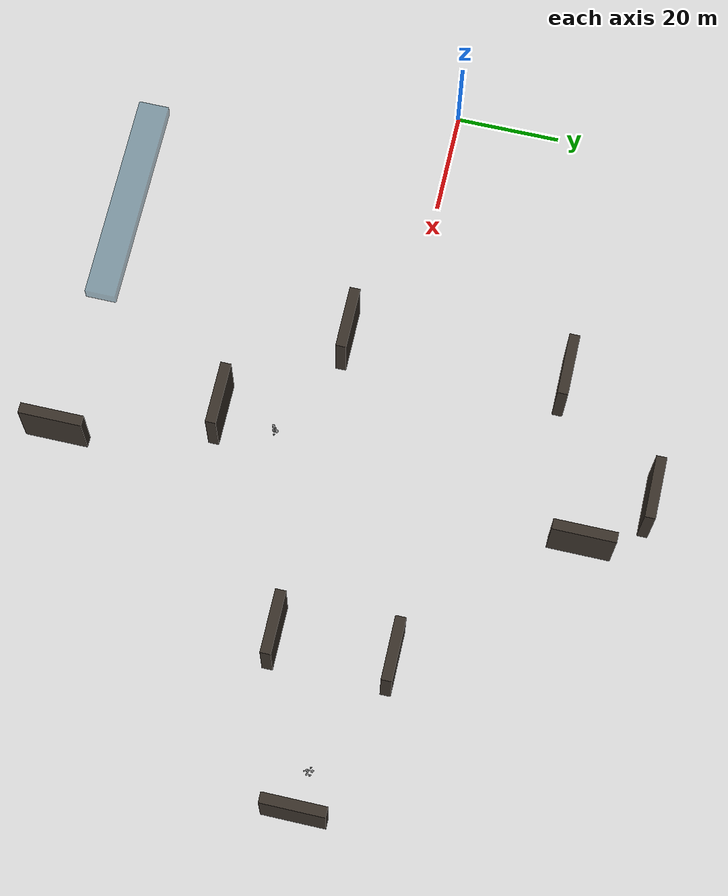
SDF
<sdf version="1.9">
 <world name="living_map">
  <model name="blocker_0">
   <static>true</static>
   <pose>50 -11 4.0 0 0 0</pose>
   <link name="l">
    <collision name="c"><geometry><box><size>12 2.0 12</size></box></geometry></collision>
    <visual name="v">
     <geometry><box><size>12 2.0 12</size></box></geometry>
     <material>
      <ambient>0.22 0.19 0.16 1</ambient>
      <diffuse>0.22 0.19 0.16 1</diffuse>
      <specular>0.05 0.05 0.05 1</specular>
      <pbr>
       <metal>
        <albedo_map>model://lm_rock/materials/textures/rock.png</albedo_map>
        <roughness>0.95</roughness>
        <metalness>0.0</metalness>
       </metal>
      </pbr>
     </material>
    </visual>
   </link>
  </model>
  <model name="blocker_1">
   <static>true</static>
   <pose>50 31 4.0 0 0 0</pose>
   <link name="l">
    <collision name="c"><geometry><box><size>12 2.0 12</size></box></geometry></collision>
    <visual name="v">
     <geometry><box><size>12 2.0 12</size></box></geometry>
     <material>
      <ambient>0.22 0.19 0.16 1</ambient>
      <diffuse>0.22 0.19 0.16 1</diffuse>
      <specular>0.05 0.05 0.05 1</specular>
      <pbr>
       <metal>
        <albedo_map>model://lm_rock/materials/textures/rock.png</albedo_map>
        <roughness>0.95</roughness>
        <metalness>0.0</metalness>
       </metal>
      </pbr>
     </material>
    </visual>
   </link>
  </model>
  <model name="blocker_2">
   <static>true</static>
   <pose>70 -31 4.0 0 0 0</pose>
   <link name="l">
    <collision name="c"><geometry><box><size>12 2.0 12</size></box></geometry></collision>
    <visual name="v">
     <geometry><box><size>12 2.0 12</size></box></geometry>
     <material>
      <ambient>0.22 0.19 0.16 1</ambient>
      <diffuse>0.22 0.19 0.16 1</diffuse>
      <specular>0.05 0.05 0.05 1</specular>
      <pbr>
       <metal>
        <albedo_map>model://lm_rock/materials/textures/rock.png</albedo_map>
        <roughness>0.95</roughness>
        <metalness>0.0</metalness>
       </metal>
      </pbr>
     </material>
    </visual>
   </link>
  </model>
  <model name="blocker_3">
   <static>true</static>
   <pose>110 11 4.0 0 0 0</pose>
   <link name="l">
    <collision name="c"><geometry><box><size>12 2.0 12</size></box></geometry></collision>
    <visual name="v">
     <geometry><box><size>12 2.0 12</size></box></geometry>
     <material>
      <ambient>0.22 0.19 0.16 1</ambient>
      <diffuse>0.22 0.19 0.16 1</diffuse>
      <specular>0.05 0.05 0.05 1</specular>
      <pbr>
       <metal>
        <albedo_map>model://lm_rock/materials/textures/rock.png</albedo_map>
        <roughness>0.95</roughness>
        <metalness>0.0</metalness>
       </metal>
      </pbr>
     </material>
    </visual>
   </link>
  </model>
  <model name="blocker_4">
   <static>true</static>
   <pose>110 -11 4.0 0 0 0</pose>
   <link name="l">
    <collision name="c"><geometry><box><size>12 2.0 12</size></box></geometry></collision>
    <visual name="v">
     <geometry><box><size>12 2.0 12</size></box></geometry>
     <material>
      <ambient>0.22 0.19 0.16 1</ambient>
      <diffuse>0.22 0.19 0.16 1</diffuse>
      <specular>0.05 0.05 0.05 1</specular>
      <pbr>
       <metal>
        <albedo_map>model://lm_rock/materials/textures/rock.png</albedo_map>
        <roughness>0.95</roughness>
        <metalness>0.0</metalness>
       </metal>
      </pbr>
     </material>
    </visual>
   </link>
  </model>
  <model name="blocker_5">
   <static>true</static>
   <pose>141 0 4.0 0 0 0</pose>
   <link name="l">
    <collision name="c"><geometry><box><size>2.0 12 12</size></box></geometry></collision>
    <visual name="v">
     <geometry><box><size>2.0 12 12</size></box></geometry>
     <material>
      <ambient>0.22 0.19 0.16 1</ambient>
      <diffuse>0.22 0.19 0.16 1</diffuse>
      <specular>0.05 0.05 0.05 1</specular>
      <pbr>
       <metal>
        <albedo_map>model://lm_rock/materials/textures/rock.png</albedo_map>
        <roughness>0.95</roughness>
        <metalness>0.0</metalness>
       </metal>
      </pbr>
     </material>
    </visual>
   </link>
  </model>
  <model name="blocker_6">
   <static>true</static>
   <pose>70 51 4.0 0 0 0</pose>
   <link name="l">
    <collision name="c"><geometry><box><size>12 2.0 12</size></box></geometry></collision>
    <visual name="v">
     <geometry><box><size>12 2.0 12</size></box></geometry>
     <material>
      <ambient>0.22 0.19 0.16 1</ambient>
      <diffuse>0.22 0.19 0.16 1</diffuse>
      <specular>0.05 0.05 0.05 1</specular>
      <pbr>
       <metal>
        <albedo_map>model://lm_rock/materials/textures/rock.png</albedo_map>
        <roughness>0.95</roughness>
        <metalness>0.0</metalness>
       </metal>
      </pbr>
     </material>
    </visual>
   </link>
  </model>
  <model name="blocker_7">
   <static>true</static>
   <pose>81 40 4.0 0 0 0</pose>
   <link name="l">
    <collision name="c"><geometry><box><size>2.0 12 12</size></box></geometry></collision>
    <visual name="v">
     <geometry><box><size>2.0 12 12</size></box></geometry>
     <material>
      <ambient>0.22 0.19 0.16 1</ambient>
      <diffuse>0.22 0.19 0.16 1</diffuse>
      <specular>0.05 0.05 0.05 1</specular>
      <pbr>
       <metal>
        <albedo_map>model://lm_rock/materials/textures/rock.png</albedo_map>
        <roughness>0.95</roughness>
        <metalness>0.0</metalness>
       </metal>
      </pbr>
     </material>
    </visual>
   </link>
  </model>
  <model name="blocker_8">
   <static>true</static>
   <pose>81 -60 4.0 0 0 0</pose>
   <link name="l">
    <collision name="c"><geometry><box><size>2.0 12 12</size></box></geometry></collision>
    <visual name="v">
     <geometry><box><size>2.0 12 12</size></box></geometry>
     <material>
      <ambient>0.22 0.19 0.16 1</ambient>
      <diffuse>0.22 0.19 0.16 1</diffuse>
      <specular>0.05 0.05 0.05 1</specular>
      <pbr>
       <metal>
        <albedo_map>model://lm_rock/materials/textures/rock.png</albedo_map>
        <roughness>0.95</roughness>
        <metalness>0.0</metalness>
       </metal>
      </pbr>
     </material>
    </visual>
   </link>
  </model>
  <model name="flooded_sump">
   <static>true</static>
   <link name="l">
    <pose>30.00 -60 -3.90 0 0 0</pose>
    <visual name="v">
     <geometry><box><size>42.00 6 2.80</size></box></geometry>
     <visibility_flags>3</visibility_flags>
     <material>
      <ambient>0.05 0.2 0.3 0.5</ambient>
      <diffuse>0.08 0.3 0.4 0.5</diffuse>
      <specular>0.6 0.6 0.6 1</specular>
     </material>
     <transparency>0.55</transparency>
     <cast_shadows>false</cast_shadows>
    </visual>
   </link>
  </model>
  <model name="rubble_1">
   <static>true</static>
   <link name="l">
    <visual name="r0">
     <pose>70.76 -20.62 0.11 2.83 2.22 3.91</pose>
     <geometry><mesh><uri>model://lm_rock/meshes/rock.obj</uri><scale>1.44 1.44 1.44</scale></mesh></geometry>
    </visual>
    <visual name="r1">
     <pose>71.69 -20.15 0.09 2.83 1.95 5.80</pose>
     <geometry><mesh><uri>model://lm_rock/meshes/rock.obj</uri><scale>1.17 1.17 1.17</scale></mesh></geometry>
    </visual>
    <visual name="r2">
     <pose>71.72 -20.23 0.09 0.74 1.63 5.66</pose>
     <geometry><mesh><uri>model://lm_rock/meshes/rock.obj</uri><scale>1.18 1.18 1.18</scale></mesh></geometry>
    </visual>
    <visual name="r3">
     <pose>71.12 -20.14 0.08 0.84 2.75 3.61</pose>
     <geometry><mesh><uri>model://lm_rock/meshes/rock.obj</uri><scale>0.97 0.97 0.97</scale></mesh></geometry>
    </visual>
    <visual name="r4">
     <pose>71.44 -20.43 0.12 0.42 1.85 4.81</pose>
     <geometry><mesh><uri>model://lm_rock/meshes/rock.obj</uri><scale>1.44 1.44 1.44</scale></mesh></geometry>
    </visual>
    <visual name="r5">
     <pose>71.61 -19.78 0.12 0.63 0.65 0.80</pose>
     <geometry><mesh><uri>model://lm_rock/meshes/rock.obj</uri><scale>1.50 1.50 1.50</scale></mesh></geometry>
    </visual>
    <visual name="r6">
     <pose>72.39 -20.11 0.08 2.88 1.62 6.17</pose>
     <geometry><mesh><uri>model://lm_rock/meshes/rock.obj</uri><scale>1.03 1.03 1.03</scale></mesh></geometry>
    </visual>
   </link>
  </model>
  <model name="rubble_3">
   <static>true</static>
   <link name="l">
    <visual name="r0">
     <pose>132.90 0.48 0.12 2.07 2.90 4.26</pose>
     <geometry><mesh><uri>model://lm_rock/meshes/rock.obj</uri><scale>1.55 1.55 1.55</scale></mesh></geometry>
    </visual>
    <visual name="r1">
     <pose>133.52 0.57 0.09 0.50 0.44 5.62</pose>
     <geometry><mesh><uri>model://lm_rock/meshes/rock.obj</uri><scale>1.09 1.09 1.09</scale></mesh></geometry>
    </visual>
    <visual name="r2">
     <pose>133.60 1.12 0.10 0.01 2.03 0.41</pose>
     <geometry><mesh><uri>model://lm_rock/meshes/rock.obj</uri><scale>1.28 1.28 1.28</scale></mesh></geometry>
    </visual>
    <visual name="r3">
     <pose>132.81 1.37 0.12 1.44 0.95 2.12</pose>
     <geometry><mesh><uri>model://lm_rock/meshes/rock.obj</uri><scale>1.45 1.45 1.45</scale></mesh></geometry>
    </visual>
    <visual name="r4">
     <pose>132.24 1.00 0.07 2.93 0.07 3.02</pose>
     <geometry><mesh><uri>model://lm_rock/meshes/rock.obj</uri><scale>0.85 0.85 0.85</scale></mesh></geometry>
    </visual>
    <visual name="r5">
     <pose>133.10 -0.08 0.07 2.36 1.10 4.71</pose>
     <geometry><mesh><uri>model://lm_rock/meshes/rock.obj</uri><scale>0.81 0.81 0.81</scale></mesh></geometry>
    </visual>
    <visual name="r6">
     <pose>132.83 0.75 0.07 0.54 2.87 3.63</pose>
     <geometry><mesh><uri>model://lm_rock/meshes/rock.obj</uri><scale>0.84 0.84 0.84</scale></mesh></geometry>
    </visual>
   </link>
  </model>
  <model name="gas_leak">
   <static>true</static>
   <pose>50.0 19.0 1.35 0 -1.5708 0</pose>
   <link name="l">
    <particle_emitter name="methane" type="box">
     <emitting>true</emitting>
     <size>0.3 5.0 3.0</size>
     <particle_size>0.6 0.6 0.6</particle_size>
     <lifetime>14</lifetime>
     <rate>6</rate>
     <min_velocity>0.02</min_velocity>
     <max_velocity>0.06</max_velocity>
     <scale_rate>0.15</scale_rate>
     <particle_scatter_ratio>0.0</particle_scatter_ratio>
     <material>
      <diffuse>0.8 0.85 0.4</diffuse>
      <specular>0.1 0.1 0.1</specular>
      <pbr><metal><albedo_map>model://lm_gas/materials/textures/gas.png</albedo_map></metal></pbr>
     </material>
     <color_range_image>model://lm_gas/materials/textures/gas_colors.png</color_range_image>
    </particle_emitter>
   </link>
  </model>
 </world>
</sdf>
